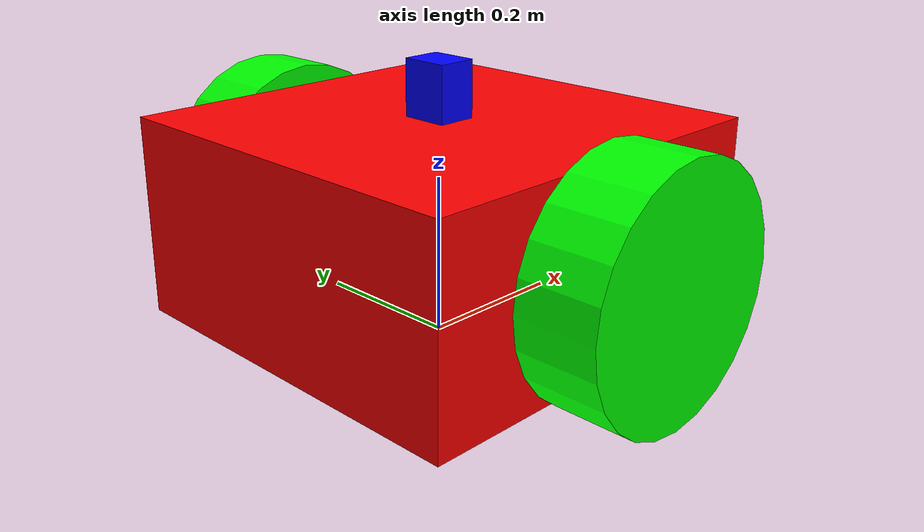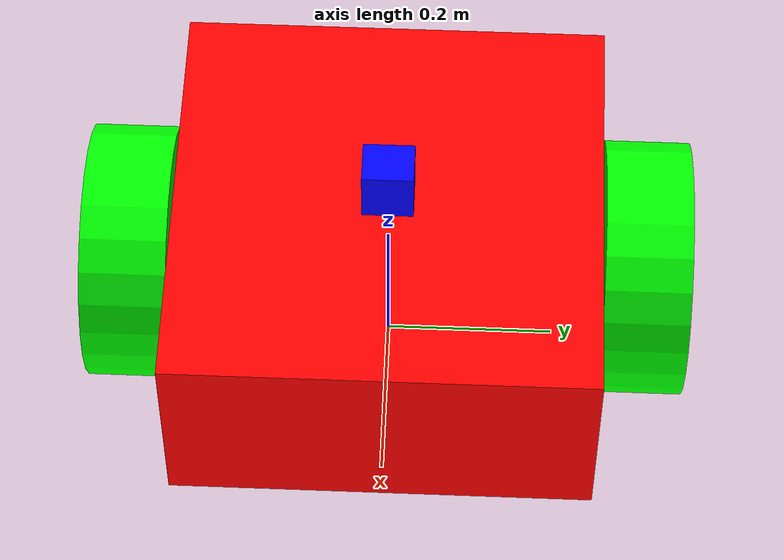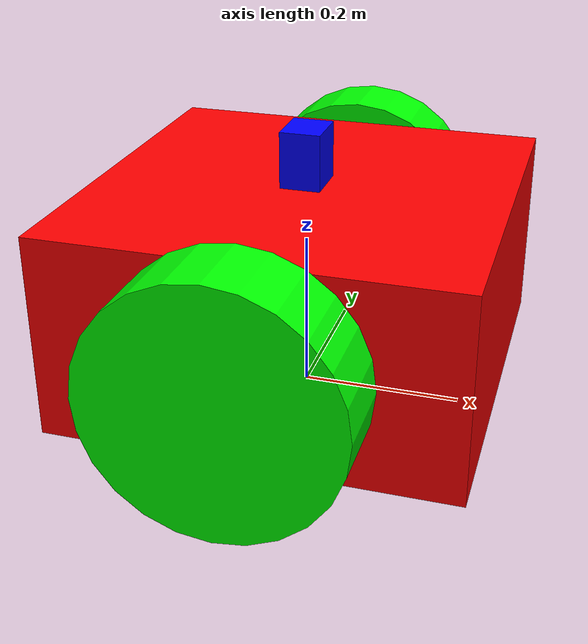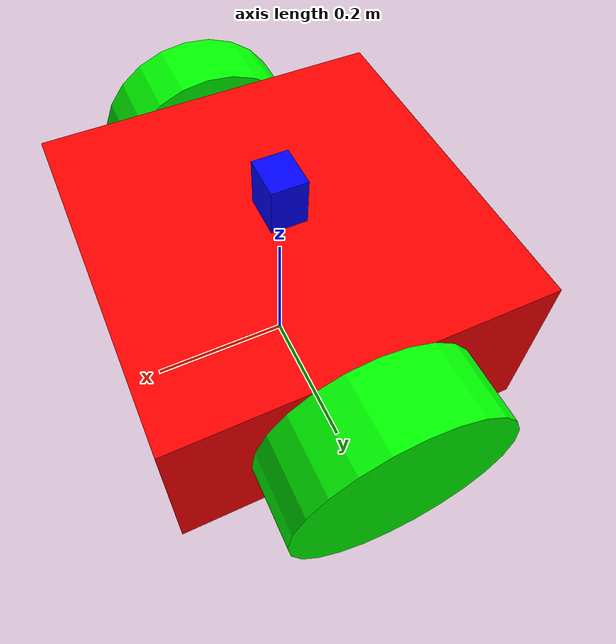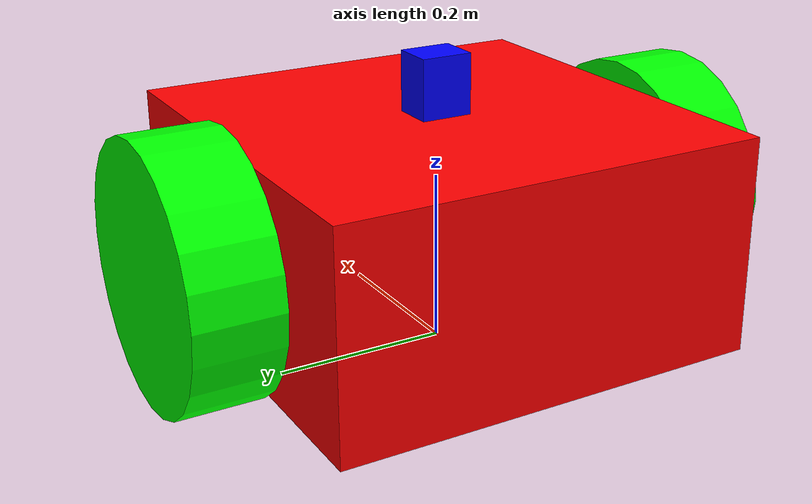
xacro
<?xml version="1.0"?>
<robot xmlns:xacro="http://www.ros.org/wiki/xacro" name ="buttler_bot">

    <xacro:include filename="inertia.xacro"/>
    <!-- BASE_FOOTPRINT LINK -->

    <link name="base_footprint">
    </link>
    <joint name = "chassis joint" type = "fixed">
        <parent link = "base_footprint"/>
        <child link = "chassis"/>
        <origin xyz = "0 0 0.15"/>
    </joint>
    <!-- Body -->
    <link name = "chassis">
        <visual>
            <origin xyz="0 0 0" rpy = "0 0 0"/>
            <geometry>
                <box size = "0.5 0.5 0.25"/>
            </geometry>
            <material name = "red">
                <color rgba = "1 0 0 1"/>
            </material>
        </visual>
        <collision>
            <origin xyz="0 0 0" rpy = "0 0 0"/>
            <geometry>
                <box size = "0.5 0.5 0.25"/>
            </geometry>
        </collision>
        <xacro:inertial_box mass="0.7" x="0.5" y="0.5" z="0.25">
            <origin xyz="0 0 0" rpy="0 0 0"/>
        </xacro:inertial_box>
    </link>
    <gazebo reference = "chassis">
        <material>Gazebo/Red</material>
    </gazebo>
    <joint name = "chassis_left_wheel" type = "continuous">
        <parent link = "chassis"/>
        <child link = "left_wheel"/>
        <origin xyz = "0 0.25 0"/>
        <axis xyz = "0 1 0"/>
    </joint>
    <!-- Left wheel -->
    <link name = "left_wheel">
        <visual>
            <origin xyz="0 0.052 0" rpy = "1.57 0 0"/>
            <geometry>
                <cylinder radius = "0.15" length = "0.1"/>
            </geometry>
            <material name = "green">
                <color rgba = "0 1 0 1"/>
            </material>
        </visual>
        <collision>
            <origin xyz="0 0.052 0" rpy = "1.57 0 0"/>
            <geometry>
                <cylinder radius = "0.15" length = "0.1"/>
            </geometry>
        </collision>
        <xacro:inertial_cylinder mass="0.25" length = "0.1" radius = "0.15">
            <origin xyz="0 0.052 0" rpy="1.57 0 0"/>
        </xacro:inertial_cylinder>
    </link>
    <gazebo reference = "left_wheel">
        <material>Gazebo/Green</material>
    </gazebo>
    <joint name = "chassis_right_wheel" type = "continuous">
        <parent link = "chassis"/>
        <child link = "right_wheel"/>
        <origin xyz = "0 -0.25 0"/>
        <axis xyz = "0 1 0"/>
    </joint>
     <!-- Right wheel -->
     <link name = "right_wheel">
        <visual>
            <origin xyz="0 -0.052 0" rpy = "1.57 0 0"/>
            <geometry>
                <cylinder radius = "0.15" length = "0.1"/>
            </geometry>
            <material name = "green">
                <color rgba = "0 1 0 1"/>
            </material>
        </visual>
        <collision>
            <origin xyz="0 -0.052 0" rpy = "1.57 0 0"/>
            <geometry>
                <cylinder radius = "0.15" length = "0.1"/>
            </geometry>
        </collision>
        <xacro:inertial_cylinder mass="0.25" length = "0.1" radius = "0.15">
            <origin xyz="0 -0.052 0" rpy="1.57 0 0"/>
        </xacro:inertial_cylinder>
    </link>
    <gazebo reference = "right_wheel">
        <material>Gazebo/Green</material>
    </gazebo>
    <!-- Front caster wheel -->
    <joint name = "front_caster_wheel" type = "fixed">
        <parent link = "chassis"/>
        <child link = "front_caster_wheel"/>
        <origin xyz = "0.20 0 -0.125"/>
    </joint>
    <link name = "front_caster_wheel">
        <visual>
            <origin xyz="0 0 0"/>
            <geometry>
                <sphere radius = "0.025" />
            </geometry>
            <material name = "blue">
                <color rgba = "0 0 1 1"/>
            </material>
        </visual>
        <collision>
            <origin xyz="0 0 0"/>
            <geometry>
                <sphere radius = "0.025" />
            </geometry>
        </collision>
        <xacro:inertial_sphere mass="0.1" radius="0.025">
            <origin xyz="0 0 0" rpy="0 0 0"/>
        </xacro:inertial_sphere>
    </link>
    <gazebo reference = "front_caster_wheel">
        <material>Gazebo/Blue</material>
        <mu1 value = "0.001"/>
        <mu2 value = "0.001"/>
    </gazebo>

    <!-- Rear caster wheel -->
    <joint name = "rear_caster_wheel" type = "fixed">
        <parent link = "chassis"/>
        <child link = "rear_caster_wheel"/>
        <origin xyz = "-0.20 0 -0.125"/>
    </joint>
    <link name = "rear_caster_wheel">
        <visual>
            <origin xyz="0 0 0"/>
            <geometry>
                <sphere radius = "0.025" />
            </geometry>
            <material name = "blue">
                <color rgba = "0 0 1 1"/>
            </material>
        </visual>
        <collision>
            <origin xyz="0 0 0"/>
            <geometry>
                <sphere radius = "0.025" />
            </geometry>
        </collision>
        <xacro:inertial_sphere mass="0.1" radius="0.025">
            <origin xyz="0 0 0" rpy="0 0 0"/>
        </xacro:inertial_sphere>
    </link>
    <gazebo reference = "rear_caster_wheel">
        <material>Gazebo/Blue</material>
        <mu1 value = "0.001"/>
        <mu2 value = "0.001"/>
    </gazebo>
    <!-- Lidar link -->
     <joint name = "lidar_joint" type = "fixed">
        <parent link = "chassis"/>
        <child link = "lidar"/>
        <origin xyz = "0 0 0.160"/>
    </joint>
    <link name = "lidar">
        <visual>
            <origin xyz="0 0 0"/>
            <geometry>
                <box size = "0.05 0.06 0.07" />
            </geometry>
            <material name = "blue">
                <color rgba = "0 0 1 1"/>
            </material>
        </visual>
    </link>
    <!-- Lidar simulation in gazebo -->
     <gazebo reference="lidar">
        <sensor type = "ray" name="laser">
            <pose>0 0 0 0 0 0</pose>
            <visualize>true</visualize>
            <update_rate>10</update_rate>
            <ray>
                <scan>
                    <horizontal>
                        <samples>720</samples>
                        <resolution>1</resolution>
                        <min_angle>-3.14</min_angle>
                        <max_angle>3.14</max_angle>
                    </horizontal>
                </scan>
                <range>
                    <min>0.4</min>
                    <max>10</max>
                    <resolution>0.01</resolution>
                </range>
            </ray>
            <plugin name="laser" filename="libgazebo_ros_laser.so">
                <topicName>scan</topicName>
                <output_type>sensor_msgs/LaserScan</output_type>
                <frameName>lidar</frameName>
            </plugin>
        </sensor>

     </gazebo>
    <!-- Gazebo plugin for control -->
    <gazebo>
        <plugin name = "two_wheel_drive" filename = "libgazebo_ros_diff_drive.so" >
            <alwaysOn>true</alwaysOn>
            <leftJoint>chassis_left_wheel</leftJoint>
            <rightJoint>chassis_right_wheel</rightJoint>
            <commandTopic>cmd_vel</commandTopic>
            <wheelSeparation>0.5</wheelSeparation>
            <wheelDiameter>0.3</wheelDiameter>
            <wheelTorque>250</wheelTorque>
            <wheelAcceleration>15.0</wheelAcceleration>
            <odometryFrame>odom</odometryFrame>
            <robotBaseFrame>base_footprint</robotBaseFrame>
            <publishOdom>true</publishOdom>
            <publishOdomTF>true</publishOdomTF>
            <publishWheelTF>false</publishWheelTF>
            <updateRate>25</updateRate>
        </plugin>
    </gazebo>
</robot>
